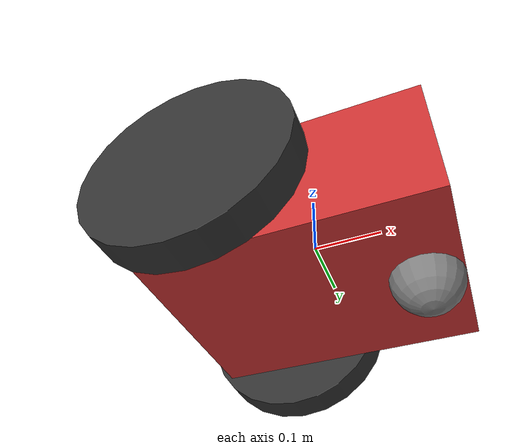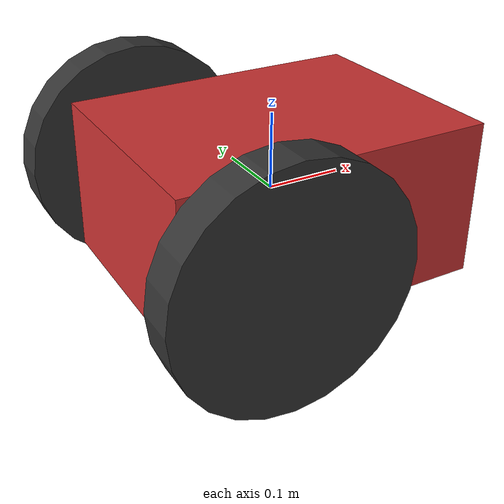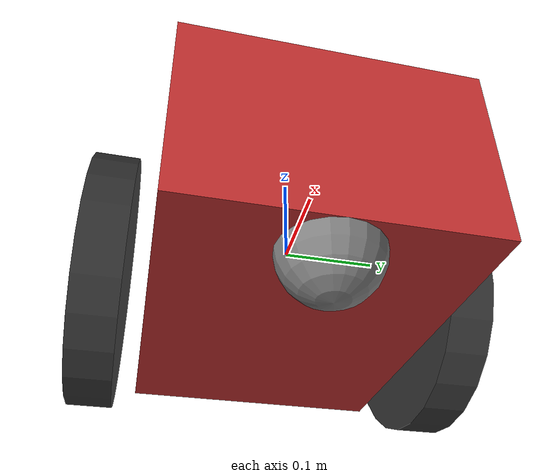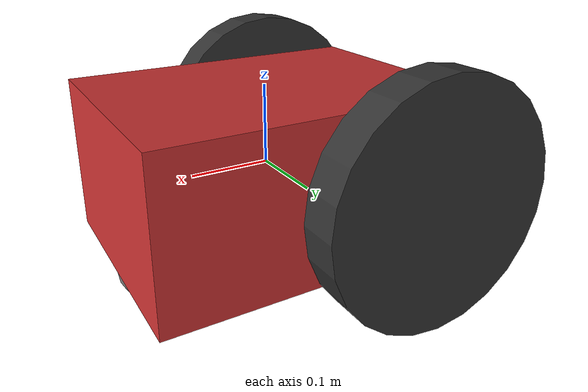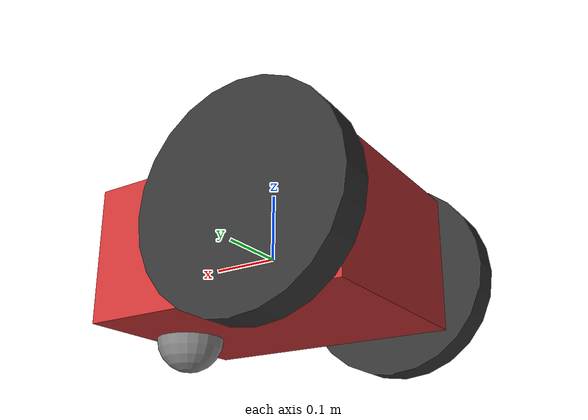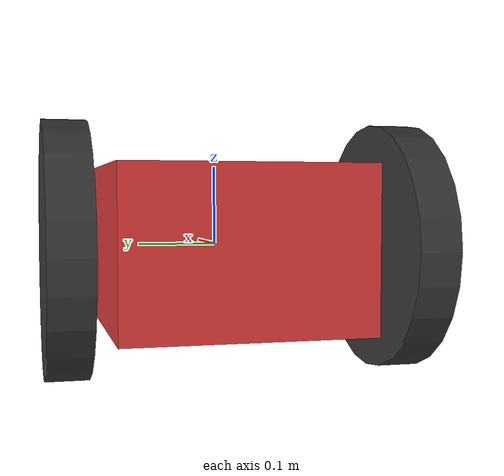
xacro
<?xml version="1.0"?>
<robot xmlns:xacro="http://ros.org/wiki/xacro" name="diff_bot">

    <!-- Parameters -->
    <xacro:property name="wheel_radius" value="0.15"/>
    <xacro:property name="wheel_width" value="0.05"/>
    <xacro:property name="wheel_separation" value="0.4"/>
    <xacro:property name="base_size_x" value="0.4"/>
    <xacro:property name="base_size_y" value="0.3"/>
    <xacro:property name="base_size_z" value="0.2"/>
    <xacro:property name="caster_radius" value="0.05"/>

    <!-- Dummy link -->
    <link name="dummy_link"></link>

    <joint name="dummy_joint" type="fixed">
        <parent link="dummy_link"/>
        <child link="base_link"/>
        <origin xyz="0 0 0" rpy="0 0 0"/>
    </joint>

    <!-- Base Link -->
    <link name="base_link">
        <inertial>
            <mass value="5.0"/>
            <inertia ixx="0.1" ixy="0" ixz="0" iyy="0.1" iyz="0" izz="0.1"/>
        </inertial>
        <visual name="base_visual">
            <geometry>
                <box size="${base_size_x} ${base_size_y} ${base_size_z}"/>
            </geometry>
            <material name="">
                <color rgba="0.8 0.2 0.2 1"/>
            </material>
        </visual>
        <collision name="base_collision">
            <geometry>
                <box size="${base_size_x} ${base_size_y} ${base_size_z}"/>
            </geometry>
        </collision>
    </link>

    <!-- Left Wheel -->
    <link name="left_wheel">
        <pose>-0.1 0.2 0 1.5708 0 0</pose>
        <inertial>
            <mass value="0.5"/>
            <inertia ixx="0.02" ixy="0" ixz="0" iyy="0.02" iyz="0" izz="0.02"/>
        </inertial>
        <visual name="left_wheel_visual">
            <geometry>
                <cylinder radius="${wheel_radius}" length="${wheel_width}"/>
            </geometry>
            <material name="">
                <color rgba="0.2 0.2 0.2 1"/>
            </material>
        </visual>
        <collision name="left_wheel_collision">
            <geometry>
                <cylinder radius="${wheel_radius}" length="${wheel_width}"/>
            </geometry>
        </collision>
    </link>

    <!-- Right Wheel -->
    <link name="right_wheel">
        <pose>-0.1 -0.2 0 1.5708 0 0</pose>
        <inertial>
            <mass value="0.5"/>
            <inertia ixx="0.02" ixy="0" ixz="0" iyy="0.02" iyz="0" izz="0.02"/>
        </inertial>
        <visual name="right_wheel_visual">
            <geometry>
                <cylinder radius="${wheel_radius}" length="${wheel_width}"/>
            </geometry>
            <material name="">
                <color rgba="0.2 0.2 0.2 1"/>
            </material>
        </visual>
        <collision name="right_wheel_collision">
            <geometry>
                <cylinder radius="${wheel_radius}" length="${wheel_width}"/>
            </geometry>
        </collision>
    </link>

    <!-- Caster Wheel -->
    <link name="caster_wheel">
        <pose>0.15 0 -0.1 0 0 0</pose>
        <inertial>
            <mass value="0.1"/>
            <inertia ixx="0.001" ixy="0" ixz="0" iyy="0.001" iyz="0" izz="0.001"/>
        </inertial>
        <visual name="caster_visual">
            <geometry>
                <sphere radius="${caster_radius}"/>
            </geometry>
            <material name="">
                <color rgba="0.5 0.5 0.5 1"/>
            </material>
        </visual>
        <collision name="caster_collision">
            <geometry>
                <sphere radius="${caster_radius}"/>
            </geometry>
        </collision>
    </link>

    <!-- Joints -->
    <joint name="left_wheel_joint" type="continuous">
        <parent link="base_link"/>
        <child link="left_wheel"/>
        <origin xyz="-0.1 0.2 0" rpy="1.5708 0 0"/>
        <axis xyz="0 0 1"/>
    </joint>

    <joint name="right_wheel_joint" type="continuous">
        <parent link="base_link"/>
        <child link="right_wheel"/>
        <origin xyz="-0.1 -0.2 0" rpy="1.5708 0 0"/>
        <axis xyz="0 0 1"/>
    </joint>

    <joint name="caster_wheel_joint" type="fixed">
        <parent link="base_link"/>
        <child link="caster_wheel"/>
        <origin xyz="0.15 0 -0.1" rpy="0 0 0"/>
    </joint>
</robot>
